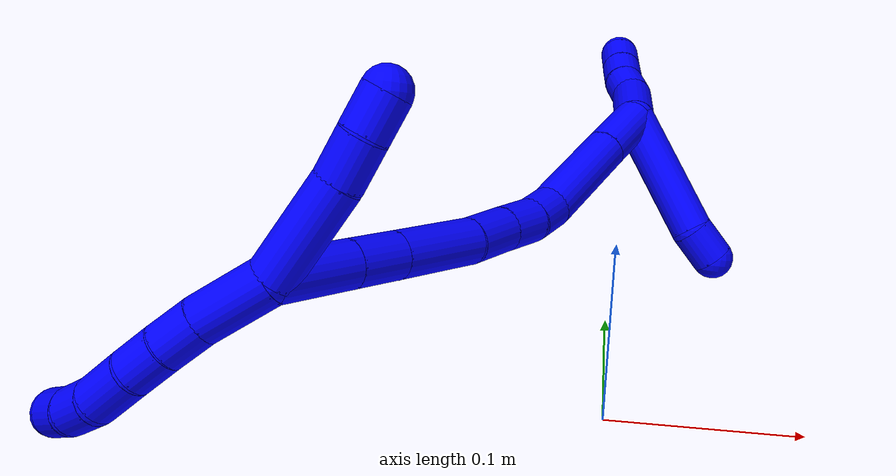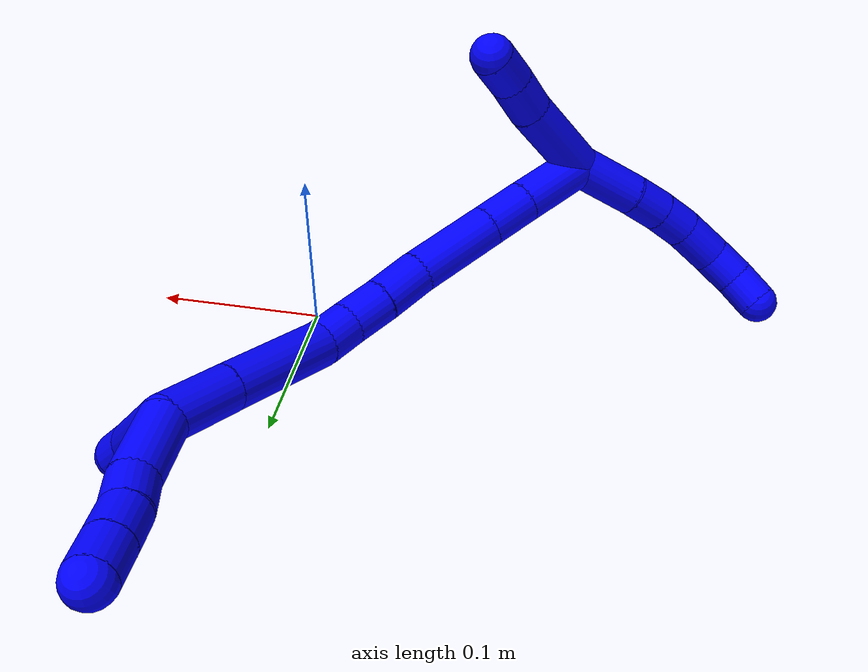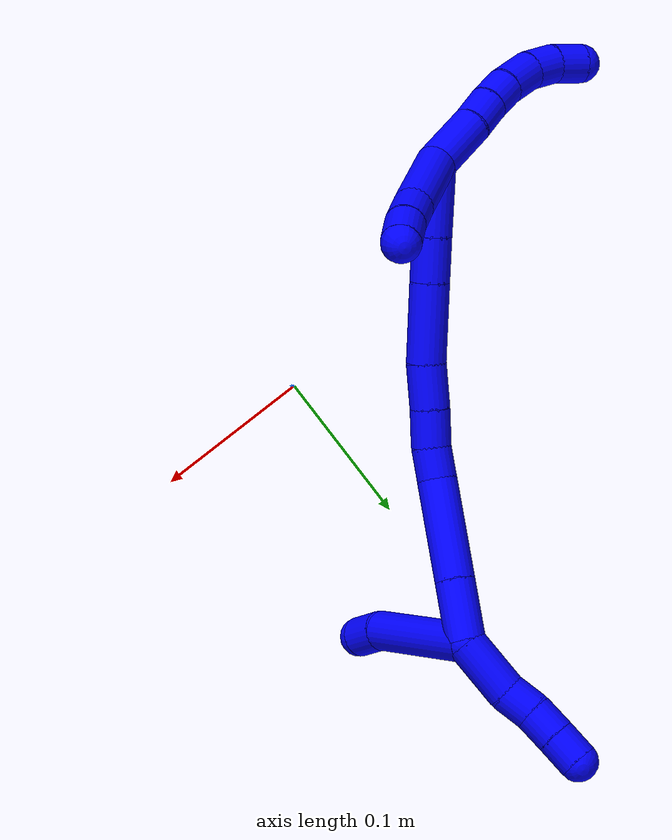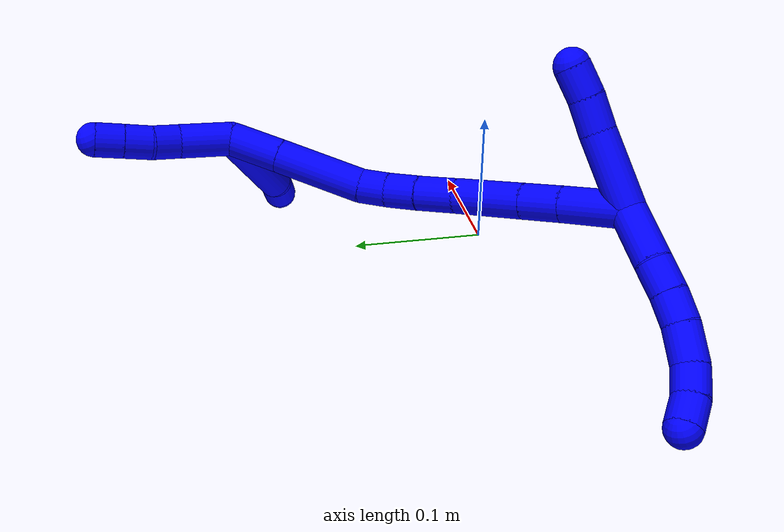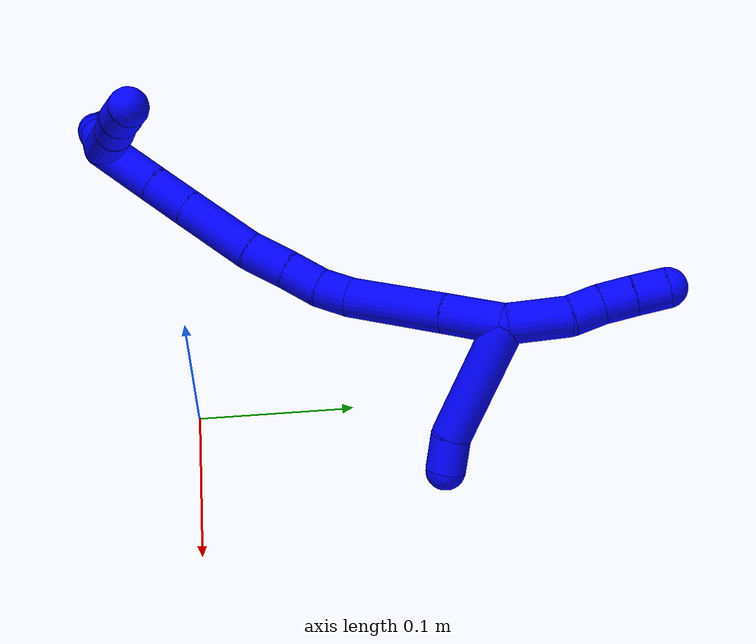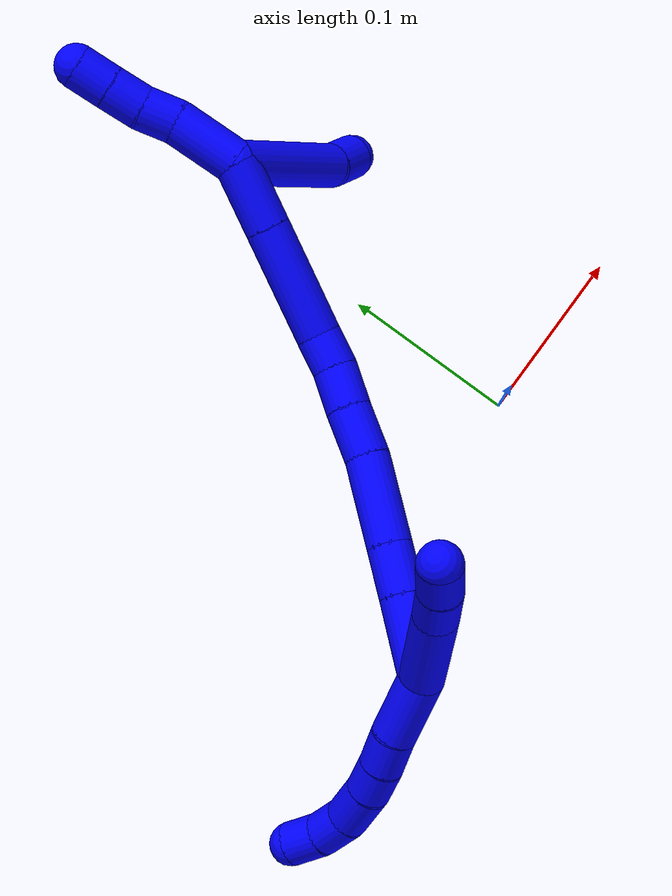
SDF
<sdf version="1.7">
 <world name="default">
  <plugin name="TubeGeneratorPlugin" filename="libtube_generator_plugin.so"/>
  <model name="photoneo_s_sensor">
   <static>1</static>
   <pose>0 0 2 1.57079 1.57079 3.14159</pose>
   <link name="link">
    <inertial><mass>0.1</mass></inertial>
    <sensor name="sensor" type="depth">
     <update_rate>30</update_rate>
     <camera>
      <horizontal_fov>1.22</horizontal_fov>
      <image><width>1920</width><height>1200</height><format>B8G8R8</format></image>
      <clip><near>0.1</near><far>4</far></clip>
      <depth_camera><output>points</output></depth_camera>
     </camera>
     <plugin name="camera_plugin" filename="libgazebo_ros_depth_camera.so">
      <baseline>0.2</baseline>
      <alwaysOn>1</alwaysOn>
      <updateRate>0.0</updateRate>
      <cameraName>camera_ir</cameraName>
      <imageTopicName>/camera/color/image_raw</imageTopicName>
      <cameraInfoTopicName>/camera/color/camera_info</cameraInfoTopicName>
      <depthImageTopicName>/camera/depth/image_raw</depthImageTopicName>
      <depthImageCameraInfoTopicName>/camera/depth/camera_info</depthImageCameraInfoTopicName>
      <pointCloudTopicName>/camera/depth/points</pointCloudTopicName>
      <frameName>fr_optical</frameName>
      <pointCloudCutoff>0.1</pointCloudCutoff>
      <pointCloudCutoffMax>2.0</pointCloudCutoffMax>
      <distortionK1>0</distortionK1>
      <distortionK2>0</distortionK2>
      <distortionK3>0</distortionK3>
      <distortionT1>0</distortionT1>
      <distortionT2>0</distortionT2>
      <CxPrime>0</CxPrime>
      <Cx>0</Cx>
      <Cy>0</Cy>
      <focalLength>0</focalLength>
      <hackBaseline>0</hackBaseline>
     </plugin>
    </sensor>
   </link>
  </model>
  <gravity>0 0 -9.8</gravity>
  <magnetic_field>6e-06 2.3e-05 -4.2e-05</magnetic_field>
  <atmosphere type="adiabatic"/>
  <physics name="default_physics" default="0" type="ode">
   <max_step_size>0.003</max_step_size>
   <real_time_factor>1</real_time_factor>
   <real_time_update_rate>1000</real_time_update_rate>
   <max_contacts>10000</max_contacts>
   <ode>
    <solver>
     <type>quick</type>
     <iters>100</iters>
     <sor>1.3</sor>
     <use_dynamic_moi_rescaling>0</use_dynamic_moi_rescaling>
    </solver>
    <constraints>
     <contact_max_correcting_vel>0</contact_max_correcting_vel>
     <contact_surface_layer>0.001</contact_surface_layer>
     <cfm>0</cfm>
     <erp>0.2</erp>
    </constraints>
   </ode>
  </physics>
  <scene><ambient>0.4 0.4 0.4 1</ambient><background>0.7 0.7 0.7 1</background><shadows>0</shadows></scene>
  <audio><device>default</device></audio>
  <spherical_coordinates>
   <surface_model>EARTH_WGS84</surface_model>
   <latitude_deg>0</latitude_deg>
   <longitude_deg>0</longitude_deg>
   <elevation>0</elevation>
   <heading_deg>0</heading_deg>
  </spherical_coordinates>
  <model name="bin">
   <static>1</static>
   <link name="bottom">
    <collision name="collision-bottom">
     <pose>0 0 -0.01 0 -0 0</pose>
     <geometry><box><size>0.8 0.6 0.02</size></box></geometry>
     <surface>
      <friction><ode><mu>100</mu><mu2>100</mu2></ode></friction>
      <contact><collide_bitmask>65535</collide_bitmask></contact>
     </surface>
    </collision>
   </link>
   <link name="west_wall">
    <collision name="collision-west_wall">
     <pose>-0.41 0 0.1 0 -0 0</pose>
     <geometry><box><size>0.02 0.6 0.2</size></box></geometry>
     <surface>
      <friction><ode><mu>100</mu><mu2>100</mu2></ode></friction>
      <contact><collide_bitmask>65535</collide_bitmask></contact>
     </surface>
    </collision>
   </link>
   <link name="east_wall">
    <collision name="collision-east_wall">
     <pose>0.41 0 0.1 0 -0 0</pose>
     <geometry><box><size>0.02 0.6 0.2</size></box></geometry>
     <surface>
      <friction><ode><mu>100</mu><mu2>100</mu2></ode></friction>
      <contact><collide_bitmask>65535</collide_bitmask></contact>
     </surface>
    </collision>
   </link>
   <link name="south_wall">
    <collision name="collision-south_wall">
     <pose>0 -0.31 0.1 0 -0 0</pose>
     <geometry><box><size>0.8 0.02 0.2</size></box></geometry>
     <surface>
      <friction><ode><mu>100</mu><mu2>100</mu2></ode></friction>
      <contact><collide_bitmask>65535</collide_bitmask></contact>
     </surface>
    </collision>
   </link>
   <link name="north_wall">
    <collision name="collision-north_wall">
     <pose>0 0.31 0.1 0 -0 0</pose>
     <geometry><box><size>0.8 0.02 0.2</size></box></geometry>
     <surface>
      <friction><ode><mu>100</mu><mu2>100</mu2></ode></friction>
      <contact><collide_bitmask>65535</collide_bitmask></contact>
     </surface>
    </collision>
   </link>
  </model>
  <model name="1">
   <static>0</static>
   <link name="1">
    <collision name="collision-cylinder-e_1_2_8">
     <pose>0.00101 -0.015816 0.01168 0.93471 0.051301 0.025893</pose>
     <geometry><cylinder><radius>0.0125</radius><length>0.039375</length></cylinder></geometry>
     <surface>
      <friction><ode><mu>1.16</mu><mu2>1.16</mu2><slip1>0</slip1><slip2>0</slip2></ode></friction>
      <contact><ode><kp>1e+06</kp><kd>1</kd><max_vel>0</max_vel><min_depth>0.001</min_depth></ode></contact>
     </surface>
    </collision>
    <visual name="visual-cylinder-e_1_2_8">
     <pose>0.00101 -0.015816 0.01168 0.93471 0.051301 0.025893</pose>
     <geometry><cylinder><radius>0.0125</radius><length>0.039375</length></cylinder></geometry>
     <material><ambient>0 0 1 1</ambient></material>
    </visual>
    <collision name="collision-cylinder-e_2_8_9">
     <pose>0.002284 -0.0398 0.030774 0.833747 0.024022 0.010638</pose>
     <geometry><cylinder><radius>0.0125</radius><length>0.022068</length></cylinder></geometry>
     <surface>
      <friction><ode><mu>1.16</mu><mu2>1.16</mu2><slip1>0</slip1><slip2>0</slip2></ode></friction>
      <contact><ode><kp>1e+06</kp><kd>1</kd><max_vel>0</max_vel><min_depth>0.001</min_depth></ode></contact>
     </surface>
    </collision>
    <visual name="visual-cylinder-e_2_8_9">
     <pose>0.002284 -0.0398 0.030774 0.833747 0.024022 0.010638</pose>
     <geometry><cylinder><radius>0.0125</radius><length>0.022068</length></cylinder></geometry>
     <material><ambient>0 0 1 1</ambient></material>
    </visual>
    <collision name="collision-cylinder-e_3_9_10">
     <pose>0.003682 -0.055535 0.04529 0.817042 0.108758 0.047116</pose>
     <geometry><cylinder><radius>0.0125</radius><length>0.020878</length></cylinder></geometry>
     <surface>
      <friction><ode><mu>1.16</mu><mu2>1.16</mu2><slip1>0</slip1><slip2>0</slip2></ode></friction>
      <contact><ode><kp>1e+06</kp><kd>1</kd><max_vel>0</max_vel><min_depth>0.001</min_depth></ode></contact>
     </surface>
    </collision>
    <visual name="visual-cylinder-e_3_9_10">
     <pose>0.003682 -0.055535 0.04529 0.817042 0.108758 0.047116</pose>
     <geometry><cylinder><radius>0.0125</radius><length>0.020878</length></cylinder></geometry>
     <material><ambient>0 0 1 1</ambient></material>
    </visual>
    <collision name="collision-cylinder-e_4_10_11">
     <pose>0.008171 -0.072468 0.061184 0.817028 0.255529 0.111101</pose>
     <geometry><cylinder><radius>0.0125</radius><length>0.026556</length></cylinder></geometry>
     <surface>
      <friction><ode><mu>1.16</mu><mu2>1.16</mu2><slip1>0</slip1><slip2>0</slip2></ode></friction>
      <contact><ode><kp>1e+06</kp><kd>1</kd><max_vel>0</max_vel><min_depth>0.001</min_depth></ode></contact>
     </surface>
    </collision>
    <visual name="visual-cylinder-e_4_10_11">
     <pose>0.008171 -0.072468 0.061184 0.817028 0.255529 0.111101</pose>
     <geometry><cylinder><radius>0.0125</radius><length>0.026556</length></cylinder></geometry>
     <material><ambient>0 0 1 1</ambient></material>
    </visual>
    <collision name="collision-cylinder-e_5_11_12">
     <pose>0.016261 -0.089675 0.0748 1.01927 0.474959 0.268918</pose>
     <geometry><cylinder><radius>0.0125</radius><length>0.020701</length></cylinder></geometry>
     <surface>
      <friction><ode><mu>1.16</mu><mu2>1.16</mu2><slip1>0</slip1><slip2>0</slip2></ode></friction>
      <contact><ode><kp>1e+06</kp><kd>1</kd><max_vel>0</max_vel><min_depth>0.001</min_depth></ode></contact>
     </surface>
    </collision>
    <visual name="visual-cylinder-e_5_11_12">
     <pose>0.016261 -0.089675 0.0748 1.01927 0.474959 0.268918</pose>
     <geometry><cylinder><radius>0.0125</radius><length>0.020701</length></cylinder></geometry>
     <material><ambient>0 0 1 1</ambient></material>
    </visual>
    <collision name="collision-cylinder-e_6_12_6">
     <pose>0.027478 -0.104841 0.082548 1.19095 0.687961 0.476194</pose>
     <geometry><cylinder><radius>0.0125</radius><length>0.020422</length></cylinder></geometry>
     <surface>
      <friction><ode><mu>1.16</mu><mu2>1.16</mu2><slip1>0</slip1><slip2>0</slip2></ode></friction>
      <contact><ode><kp>1e+06</kp><kd>1</kd><max_vel>0</max_vel><min_depth>0.001</min_depth></ode></contact>
     </surface>
    </collision>
    <visual name="visual-cylinder-e_6_12_6">
     <pose>0.027478 -0.104841 0.082548 1.19095 0.687961 0.476194</pose>
     <geometry><cylinder><radius>0.0125</radius><length>0.020422</length></cylinder></geometry>
     <material><ambient>0 0 1 1</ambient></material>
    </visual>
    <collision name="collision-cylinder-e_1_2_13">
     <pose>-0.001525 0.013304 -0.023401 -2.62464 -0.056589 0.213282</pose>
     <geometry><cylinder><radius>0.0125</radius><length>0.053922</length></cylinder></geometry>
     <surface>
      <friction><ode><mu>1.16</mu><mu2>1.16</mu2><slip1>0</slip1><slip2>0</slip2></ode></friction>
      <contact><ode><kp>1e+06</kp><kd>1</kd><max_vel>0</max_vel><min_depth>0.001</min_depth></ode></contact>
     </surface>
    </collision>
    <visual name="visual-cylinder-e_1_2_13">
     <pose>-0.001525 0.013304 -0.023401 -2.62464 -0.056589 0.213282</pose>
     <geometry><cylinder><radius>0.0125</radius><length>0.053922</length></cylinder></geometry>
     <material><ambient>0 0 1 1</ambient></material>
    </visual>
    <collision name="collision-cylinder-e_2_13_14">
     <pose>-0.004092 0.03137 -0.057802 -2.73299 -0.086723 0.412858</pose>
     <geometry><cylinder><radius>0.0125</radius><length>0.024066</length></cylinder></geometry>
     <surface>
      <friction><ode><mu>1.16</mu><mu2>1.16</mu2><slip1>0</slip1><slip2>0</slip2></ode></friction>
      <contact><ode><kp>1e+06</kp><kd>1</kd><max_vel>0</max_vel><min_depth>0.001</min_depth></ode></contact>
     </surface>
    </collision>
    <visual name="visual-cylinder-e_2_13_14">
     <pose>-0.004092 0.03137 -0.057802 -2.73299 -0.086723 0.412858</pose>
     <geometry><cylinder><radius>0.0125</radius><length>0.024066</length></cylinder></geometry>
     <material><ambient>0 0 1 1</ambient></material>
    </visual>
    <collision name="collision-cylinder-e_3_14_5">
     <pose>-0.004791 0.040315 -0.078978 -2.75168 0.031203 -0.157701</pose>
     <geometry><cylinder><radius>0.0125</radius><length>0.022012</length></cylinder></geometry>
     <surface>
      <friction><ode><mu>1.16</mu><mu2>1.16</mu2><slip1>0</slip1><slip2>0</slip2></ode></friction>
      <contact><ode><kp>1e+06</kp><kd>1</kd><max_vel>0</max_vel><min_depth>0.001</min_depth></ode></contact>
     </surface>
    </collision>
    <visual name="visual-cylinder-e_3_14_5">
     <pose>-0.004791 0.040315 -0.078978 -2.75168 0.031203 -0.157701</pose>
     <geometry><cylinder><radius>0.0125</radius><length>0.022012</length></cylinder></geometry>
     <material><ambient>0 0 1 1</ambient></material>
    </visual>
    <collision name="collision-cylinder-e_1_2_15">
     <pose>0.016739 0.014256 -0.003572 -1.81632 0.85027 -1.05146</pose>
     <geometry><cylinder><radius>0.0125</radius><length>0.04455</length></cylinder></geometry>
     <surface>
      <friction><ode><mu>1.16</mu><mu2>1.16</mu2><slip1>0</slip1><slip2>0</slip2></ode></friction>
      <contact><ode><kp>1e+06</kp><kd>1</kd><max_vel>0</max_vel><min_depth>0.001</min_depth></ode></contact>
     </surface>
    </collision>
    <visual name="visual-cylinder-e_1_2_15">
     <pose>0.016739 0.014256 -0.003572 -1.81632 0.85027 -1.05146</pose>
     <geometry><cylinder><radius>0.0125</radius><length>0.04455</length></cylinder></geometry>
     <material><ambient>0 0 1 1</ambient></material>
    </visual>
    <collision name="collision-cylinder-e_2_15_16">
     <pose>0.044235 0.037481 -0.00934 -1.81084 0.861459 -1.05944</pose>
     <geometry><cylinder><radius>0.0125</radius><length>0.028354</length></cylinder></geometry>
     <surface>
      <friction><ode><mu>1.16</mu><mu2>1.16</mu2><slip1>0</slip1><slip2>0</slip2></ode></friction>
      <contact><ode><kp>1e+06</kp><kd>1</kd><max_vel>0</max_vel><min_depth>0.001</min_depth></ode></contact>
     </surface>
    </collision>
    <visual name="visual-cylinder-e_2_15_16">
     <pose>0.044235 0.037481 -0.00934 -1.81084 0.861459 -1.05944</pose>
     <geometry><cylinder><radius>0.0125</radius><length>0.028354</length></cylinder></geometry>
     <material><ambient>0 0 1 1</ambient></material>
    </visual>
    <collision name="collision-cylinder-e_3_16_17">
     <pose>0.074243 0.062401 -0.015515 -1.81534 0.864002 -1.06641</pose>
     <geometry><cylinder><radius>0.0125</radius><length>0.050631</length></cylinder></geometry>
     <surface>
      <friction><ode><mu>1.16</mu><mu2>1.16</mu2><slip1>0</slip1><slip2>0</slip2></ode></friction>
      <contact><ode><kp>1e+06</kp><kd>1</kd><max_vel>0</max_vel><min_depth>0.001</min_depth></ode></contact>
     </surface>
    </collision>
    <visual name="visual-cylinder-e_3_16_17">
     <pose>0.074243 0.062401 -0.015515 -1.81534 0.864002 -1.06641</pose>
     <geometry><cylinder><radius>0.0125</radius><length>0.050631</length></cylinder></geometry>
     <material><ambient>0 0 1 1</ambient></material>
    </visual>
    <collision name="collision-cylinder-e_4_17_18">
     <pose>0.105104 0.085917 -0.022764 -1.97856 0.953481 -1.33193</pose>
     <geometry><cylinder><radius>0.0125</radius><length>0.028474</length></cylinder></geometry>
     <surface>
      <friction><ode><mu>1.16</mu><mu2>1.16</mu2><slip1>0</slip1><slip2>0</slip2></ode></friction>
      <contact><ode><kp>1e+06</kp><kd>1</kd><max_vel>0</max_vel><min_depth>0.001</min_depth></ode></contact>
     </surface>
    </collision>
    <visual name="visual-cylinder-e_4_17_18">
     <pose>0.105104 0.085917 -0.022764 -1.97856 0.953481 -1.33193</pose>
     <geometry><cylinder><radius>0.0125</radius><length>0.028474</length></cylinder></geometry>
     <material><ambient>0 0 1 1</ambient></material>
    </visual>
    <collision name="collision-cylinder-e_5_18_19">
     <pose>0.1262 0.10034 -0.028763 -1.94974 0.909561 -1.24937</pose>
     <geometry><cylinder><radius>0.0125</radius><length>0.024039</length></cylinder></geometry>
     <surface>
      <friction><ode><mu>1.16</mu><mu2>1.16</mu2><slip1>0</slip1><slip2>0</slip2></ode></friction>
      <contact><ode><kp>1e+06</kp><kd>1</kd><max_vel>0</max_vel><min_depth>0.001</min_depth></ode></contact>
     </surface>
    </collision>
    <visual name="visual-cylinder-e_5_18_19">
     <pose>0.1262 0.10034 -0.028763 -1.94974 0.909561 -1.24937</pose>
     <geometry><cylinder><radius>0.0125</radius><length>0.024039</length></cylinder></geometry>
     <material><ambient>0 0 1 1</ambient></material>
    </visual>
    <collision name="collision-cylinder-e_6_19_20">
     <pose>0.14413 0.111833 -0.035318 -2.26057 0.952228 -1.66045</pose>
     <geometry><cylinder><radius>0.0125</radius><length>0.02073</length></cylinder></geometry>
     <surface>
      <friction><ode><mu>1.16</mu><mu2>1.16</mu2><slip1>0</slip1><slip2>0</slip2></ode></friction>
      <contact><ode><kp>1e+06</kp><kd>1</kd><max_vel>0</max_vel><min_depth>0.001</min_depth></ode></contact>
     </surface>
    </collision>
    <visual name="visual-cylinder-e_6_19_20">
     <pose>0.14413 0.111833 -0.035318 -2.26057 0.952228 -1.66045</pose>
     <geometry><cylinder><radius>0.0125</radius><length>0.02073</length></cylinder></geometry>
     <material><ambient>0 0 1 1</ambient></material>
    </visual>
    <collision name="collision-cylinder-e_7_20_21">
     <pose>0.175461 0.13026 -0.057251 -2.49076 0.788142 -1.77825</pose>
     <geometry><cylinder><radius>0.0125</radius><length>0.064556</length></cylinder></geometry>
     <surface>
      <friction><ode><mu>1.16</mu><mu2>1.16</mu2><slip1>0</slip1><slip2>0</slip2></ode></friction>
      <contact><ode><kp>1e+06</kp><kd>1</kd><max_vel>0</max_vel><min_depth>0.001</min_depth></ode></contact>
     </surface>
    </collision>
    <visual name="visual-cylinder-e_7_20_21">
     <pose>0.175461 0.13026 -0.057251 -2.49076 0.788142 -1.77825</pose>
     <geometry><cylinder><radius>0.0125</radius><length>0.064556</length></cylinder></geometry>
     <material><ambient>0 0 1 1</ambient></material>
    </visual>
    <collision name="collision-cylinder-e_8_21_1">
     <pose>0.212155 0.152329 -0.086064 -2.48327 0.795418 -1.77622</pose>
     <geometry><cylinder><radius>0.0125</radius><length>0.038666</length></cylinder></geometry>
     <surface>
      <friction><ode><mu>1.16</mu><mu2>1.16</mu2><slip1>0</slip1><slip2>0</slip2></ode></friction>
      <contact><ode><kp>1e+06</kp><kd>1</kd><max_vel>0</max_vel><min_depth>0.001</min_depth></ode></contact>
     </surface>
    </collision>
    <visual name="visual-cylinder-e_8_21_1">
     <pose>0.212155 0.152329 -0.086064 -2.48327 0.795418 -1.77622</pose>
     <geometry><cylinder><radius>0.0125</radius><length>0.038666</length></cylinder></geometry>
     <material><ambient>0 0 1 1</ambient></material>
    </visual>
    <collision name="collision-cylinder-e_1_1_22">
     <pose>0.220717 0.181852 -0.064517 -0.582465 -0.134977 0.040516</pose>
     <geometry><cylinder><radius>0.0125</radius><length>0.077949</length></cylinder></geometry>
     <surface>
      <friction><ode><mu>1.16</mu><mu2>1.16</mu2><slip1>0</slip1><slip2>0</slip2></ode></friction>
      <contact><ode><kp>1e+06</kp><kd>1</kd><max_vel>0</max_vel><min_depth>0.001</min_depth></ode></contact>
     </surface>
    </collision>
    <visual name="visual-cylinder-e_1_1_22">
     <pose>0.220717 0.181852 -0.064517 -0.582465 -0.134977 0.040516</pose>
     <geometry><cylinder><radius>0.0125</radius><length>0.077949</length></cylinder></geometry>
     <material><ambient>0 0 1 1</ambient></material>
    </visual>
    <collision name="collision-cylinder-e_2_22_4">
     <pose>0.216537 0.210533 -0.024195 -0.744541 0.096751 -0.037804</pose>
     <geometry><cylinder><radius>0.0125</radius><length>0.022051</length></cylinder></geometry>
     <surface>
      <friction><ode><mu>1.16</mu><mu2>1.16</mu2><slip1>0</slip1><slip2>0</slip2></ode></friction>
      <contact><ode><kp>1e+06</kp><kd>1</kd><max_vel>0</max_vel><min_depth>0.001</min_depth></ode></contact>
     </surface>
    </collision>
    <visual name="visual-cylinder-e_2_22_4">
     <pose>0.216537 0.210533 -0.024195 -0.744541 0.096751 -0.037804</pose>
     <geometry><cylinder><radius>0.0125</radius><length>0.022051</length></cylinder></geometry>
     <material><ambient>0 0 1 1</ambient></material>
    </visual>
    <collision name="collision-cylinder-e_1_1_23">
     <pose>0.243678 0.159578 -0.104665 3.01186 1.14839 2.94143</pose>
     <geometry><cylinder><radius>0.0125</radius><length>0.038848</length></cylinder></geometry>
     <surface>
      <friction><ode><mu>1.16</mu><mu2>1.16</mu2><slip1>0</slip1><slip2>0</slip2></ode></friction>
      <contact><ode><kp>1e+06</kp><kd>1</kd><max_vel>0</max_vel><min_depth>0.001</min_depth></ode></contact>
     </surface>
    </collision>
    <visual name="visual-cylinder-e_1_1_23">
     <pose>0.243678 0.159578 -0.104665 3.01186 1.14839 2.94143</pose>
     <geometry><cylinder><radius>0.0125</radius><length>0.038848</length></cylinder></geometry>
     <material><ambient>0 0 1 1</ambient></material>
    </visual>
    <collision name="collision-cylinder-e_2_23_24">
     <pose>0.269856 0.155686 -0.117301 2.59841 0.991362 2.19042</pose>
     <geometry><cylinder><radius>0.0125</radius><length>0.020224</length></cylinder></geometry>
     <surface>
      <friction><ode><mu>1.16</mu><mu2>1.16</mu2><slip1>0</slip1><slip2>0</slip2></ode></friction>
      <contact><ode><kp>1e+06</kp><kd>1</kd><max_vel>0</max_vel><min_depth>0.001</min_depth></ode></contact>
     </surface>
    </collision>
    <visual name="visual-cylinder-e_2_23_24">
     <pose>0.269856 0.155686 -0.117301 2.59841 0.991362 2.19042</pose>
     <geometry><cylinder><radius>0.0125</radius><length>0.020224</length></cylinder></geometry>
     <material><ambient>0 0 1 1</ambient></material>
    </visual>
    <collision name="collision-cylinder-e_3_24_25">
     <pose>0.286855 0.151598 -0.127397 2.91657 0.998961 2.7332</pose>
     <geometry><cylinder><radius>0.0125</radius><length>0.020307</length></cylinder></geometry>
     <surface>
      <friction><ode><mu>1.16</mu><mu2>1.16</mu2><slip1>0</slip1><slip2>0</slip2></ode></friction>
      <contact><ode><kp>1e+06</kp><kd>1</kd><max_vel>0</max_vel><min_depth>0.001</min_depth></ode></contact>
     </surface>
    </collision>
    <visual name="visual-cylinder-e_3_24_25">
     <pose>0.286855 0.151598 -0.127397 2.91657 0.998961 2.7332</pose>
     <geometry><cylinder><radius>0.0125</radius><length>0.020307</length></cylinder></geometry>
     <material><ambient>0 0 1 1</ambient></material>
    </visual>
    <collision name="collision-cylinder-e_4_25_3">
     <pose>0.304142 0.149296 -0.138102 2.9431 1.01318 2.78648</pose>
     <geometry><cylinder><radius>0.0125</radius><length>0.020622</length></cylinder></geometry>
     <surface>
      <friction><ode><mu>1.16</mu><mu2>1.16</mu2><slip1>0</slip1><slip2>0</slip2></ode></friction>
      <contact><ode><kp>1e+06</kp><kd>1</kd><max_vel>0</max_vel><min_depth>0.001</min_depth></ode></contact>
     </surface>
    </collision>
    <visual name="visual-cylinder-e_4_25_3">
     <pose>0.304142 0.149296 -0.138102 2.9431 1.01318 2.78648</pose>
     <geometry><cylinder><radius>0.0125</radius><length>0.020622</length></cylinder></geometry>
     <material><ambient>0 0 1 1</ambient></material>
    </visual>
    <collision name="collision-sphere-3">
     <pose>0.312891 0.14822 -0.143451 0 -0 0</pose>
     <geometry><sphere><radius>0.0125</radius></sphere></geometry>
     <surface>
      <friction><ode><mu>1.16</mu><mu2>1.16</mu2><slip1>0</slip1><slip2>0</slip2></ode></friction>
      <contact><ode><kp>1e+06</kp><kd>1</kd><max_vel>0</max_vel><min_depth>0.001</min_depth></ode></contact>
     </surface>
    </collision>
    <visual name="visual-sphere-3">
     <pose>0.312891 0.14822 -0.143451 0 -0 0</pose>
     <geometry><sphere><radius>0.0125</radius></sphere></geometry>
     <material><ambient>0 0 1 1</ambient></material>
    </visual>
    <collision name="collision-sphere-25">
     <pose>0.295394 0.150372 -0.132753 0 -0 0</pose>
     <geometry><sphere><radius>0.0125</radius></sphere></geometry>
     <surface>
      <friction><ode><mu>1.16</mu><mu2>1.16</mu2><slip1>0</slip1><slip2>0</slip2></ode></friction>
      <contact><ode><kp>1e+06</kp><kd>1</kd><max_vel>0</max_vel><min_depth>0.001</min_depth></ode></contact>
     </surface>
    </collision>
    <visual name="visual-sphere-25">
     <pose>0.295394 0.150372 -0.132753 0 -0 0</pose>
     <geometry><sphere><radius>0.0125</radius></sphere></geometry>
     <material><ambient>0 0 1 1</ambient></material>
    </visual>
    <collision name="collision-sphere-24">
     <pose>0.278317 0.152824 -0.122041 0 -0 0</pose>
     <geometry><sphere><radius>0.0125</radius></sphere></geometry>
     <surface>
      <friction><ode><mu>1.16</mu><mu2>1.16</mu2><slip1>0</slip1><slip2>0</slip2></ode></friction>
      <contact><ode><kp>1e+06</kp><kd>1</kd><max_vel>0</max_vel><min_depth>0.001</min_depth></ode></contact>
     </surface>
    </collision>
    <visual name="visual-sphere-24">
     <pose>0.278317 0.152824 -0.122041 0 -0 0</pose>
     <geometry><sphere><radius>0.0125</radius></sphere></geometry>
     <material><ambient>0 0 1 1</ambient></material>
    </visual>
    <collision name="collision-sphere-23">
     <pose>0.261395 0.158548 -0.112561 0 -0 0</pose>
     <geometry><sphere><radius>0.0125</radius></sphere></geometry>
     <surface>
      <friction><ode><mu>1.16</mu><mu2>1.16</mu2><slip1>0</slip1><slip2>0</slip2></ode></friction>
      <contact><ode><kp>1e+06</kp><kd>1</kd><max_vel>0</max_vel><min_depth>0.001</min_depth></ode></contact>
     </surface>
    </collision>
    <visual name="visual-sphere-23">
     <pose>0.261395 0.158548 -0.112561 0 -0 0</pose>
     <geometry><sphere><radius>0.0125</radius></sphere></geometry>
     <material><ambient>0 0 1 1</ambient></material>
    </visual>
    <collision name="collision-sphere-4">
     <pose>0.217602 0.217969 -0.016125 0 -0 0</pose>
     <geometry><sphere><radius>0.0125</radius></sphere></geometry>
     <surface>
      <friction><ode><mu>1.16</mu><mu2>1.16</mu2><slip1>0</slip1><slip2>0</slip2></ode></friction>
      <contact><ode><kp>1e+06</kp><kd>1</kd><max_vel>0</max_vel><min_depth>0.001</min_depth></ode></contact>
     </surface>
    </collision>
    <visual name="visual-sphere-4">
     <pose>0.217602 0.217969 -0.016125 0 -0 0</pose>
     <geometry><sphere><radius>0.0125</radius></sphere></geometry>
     <material><ambient>0 0 1 1</ambient></material>
    </visual>
    <collision name="collision-sphere-22">
     <pose>0.215472 0.203097 -0.032265 0 -0 0</pose>
     <geometry><sphere><radius>0.0125</radius></sphere></geometry>
     <surface>
      <friction><ode><mu>1.16</mu><mu2>1.16</mu2><slip1>0</slip1><slip2>0</slip2></ode></friction>
      <contact><ode><kp>1e+06</kp><kd>1</kd><max_vel>0</max_vel><min_depth>0.001</min_depth></ode></contact>
     </surface>
    </collision>
    <visual name="visual-sphere-22">
     <pose>0.215472 0.203097 -0.032265 0 -0 0</pose>
     <geometry><sphere><radius>0.0125</radius></sphere></geometry>
     <material><ambient>0 0 1 1</ambient></material>
    </visual>
    <collision name="collision-sphere-1">
     <pose>0.225961 0.160608 -0.096769 0 -0 0</pose>
     <geometry><sphere><radius>0.0125</radius></sphere></geometry>
     <surface>
      <friction><ode><mu>1.16</mu><mu2>1.16</mu2><slip1>0</slip1><slip2>0</slip2></ode></friction>
      <contact><ode><kp>1e+06</kp><kd>1</kd><max_vel>0</max_vel><min_depth>0.001</min_depth></ode></contact>
     </surface>
    </collision>
    <visual name="visual-sphere-1">
     <pose>0.225961 0.160608 -0.096769 0 -0 0</pose>
     <geometry><sphere><radius>0.0125</radius></sphere></geometry>
     <material><ambient>0 0 1 1</ambient></material>
    </visual>
    <collision name="collision-sphere-21">
     <pose>0.198348 0.14405 -0.075359 0 -0 0</pose>
     <geometry><sphere><radius>0.0125</radius></sphere></geometry>
     <surface>
      <friction><ode><mu>1.16</mu><mu2>1.16</mu2><slip1>0</slip1><slip2>0</slip2></ode></friction>
      <contact><ode><kp>1e+06</kp><kd>1</kd><max_vel>0</max_vel><min_depth>0.001</min_depth></ode></contact>
     </surface>
    </collision>
    <visual name="visual-sphere-21">
     <pose>0.198348 0.14405 -0.075359 0 -0 0</pose>
     <geometry><sphere><radius>0.0125</radius></sphere></geometry>
     <material><ambient>0 0 1 1</ambient></material>
    </visual>
    <collision name="collision-sphere-12">
     <pose>0.020994 -0.097514 0.079623 0 -0 0</pose>
     <geometry><sphere><radius>0.0125</radius></sphere></geometry>
     <surface>
      <friction><ode><mu>1.16</mu><mu2>1.16</mu2><slip1>0</slip1><slip2>0</slip2></ode></friction>
      <contact><ode><kp>1e+06</kp><kd>1</kd><max_vel>0</max_vel><min_depth>0.001</min_depth></ode></contact>
     </surface>
    </collision>
    <visual name="visual-sphere-12">
     <pose>0.020994 -0.097514 0.079623 0 -0 0</pose>
     <geometry><sphere><radius>0.0125</radius></sphere></geometry>
     <material><ambient>0 0 1 1</ambient></material>
    </visual>
    <collision name="collision-sphere-11">
     <pose>0.011528 -0.081835 0.069977 0 -0 0</pose>
     <geometry><sphere><radius>0.0125</radius></sphere></geometry>
     <surface>
      <friction><ode><mu>1.16</mu><mu2>1.16</mu2><slip1>0</slip1><slip2>0</slip2></ode></friction>
      <contact><ode><kp>1e+06</kp><kd>1</kd><max_vel>0</max_vel><min_depth>0.001</min_depth></ode></contact>
     </surface>
    </collision>
    <visual name="visual-sphere-11">
     <pose>0.011528 -0.081835 0.069977 0 -0 0</pose>
     <geometry><sphere><radius>0.0125</radius></sphere></geometry>
     <material><ambient>0 0 1 1</ambient></material>
    </visual>
    <collision name="collision-sphere-10">
     <pose>0.004815 -0.063101 0.052392 0 -0 0</pose>
     <geometry><sphere><radius>0.0125</radius></sphere></geometry>
     <surface>
      <friction><ode><mu>1.16</mu><mu2>1.16</mu2><slip1>0</slip1><slip2>0</slip2></ode></friction>
      <contact><ode><kp>1e+06</kp><kd>1</kd><max_vel>0</max_vel><min_depth>0.001</min_depth></ode></contact>
     </surface>
    </collision>
    <visual name="visual-sphere-10">
     <pose>0.004815 -0.063101 0.052392 0 -0 0</pose>
     <geometry><sphere><radius>0.0125</radius></sphere></geometry>
     <material><ambient>0 0 1 1</ambient></material>
    </visual>
    <collision name="collision-sphere-9">
     <pose>0.002549 -0.047968 0.038188 0 -0 0</pose>
     <geometry><sphere><radius>0.0125</radius></sphere></geometry>
     <surface>
      <friction><ode><mu>1.16</mu><mu2>1.16</mu2><slip1>0</slip1><slip2>0</slip2></ode></friction>
      <contact><ode><kp>1e+06</kp><kd>1</kd><max_vel>0</max_vel><min_depth>0.001</min_depth></ode></contact>
     </surface>
    </collision>
    <visual name="visual-sphere-9">
     <pose>0.002549 -0.047968 0.038188 0 -0 0</pose>
     <geometry><sphere><radius>0.0125</radius></sphere></geometry>
     <material><ambient>0 0 1 1</ambient></material>
    </visual>
    <collision name="collision-sphere-2">
     <geometry><sphere><radius>0.0125</radius></sphere></geometry>
     <surface>
      <friction><ode><mu>1.16</mu><mu2>1.16</mu2><slip1>0</slip1><slip2>0</slip2></ode></friction>
      <contact><ode><kp>1e+06</kp><kd>1</kd><max_vel>0</max_vel><min_depth>0.001</min_depth></ode></contact>
     </surface>
    </collision>
    <visual name="visual-sphere-2">
     <geometry><sphere><radius>0.0125</radius></sphere></geometry>
     <material><ambient>0 0 1 1</ambient></material>
    </visual>
    <collision name="collision-sphere-19">
     <pose>0.135686 0.107197 -0.031493 0 -0 0</pose>
     <geometry><sphere><radius>0.0125</radius></sphere></geometry>
     <surface>
      <friction><ode><mu>1.16</mu><mu2>1.16</mu2><slip1>0</slip1><slip2>0</slip2></ode></friction>
      <contact><ode><kp>1e+06</kp><kd>1</kd><max_vel>0</max_vel><min_depth>0.001</min_depth></ode></contact>
     </surface>
    </collision>
    <visual name="visual-sphere-19">
     <pose>0.135686 0.107197 -0.031493 0 -0 0</pose>
     <geometry><sphere><radius>0.0125</radius></sphere></geometry>
     <material><ambient>0 0 1 1</ambient></material>
    </visual>
    <collision name="collision-sphere-8">
     <pose>0.002019 -0.031632 0.02336 0 -0 0</pose>
     <geometry><sphere><radius>0.0125</radius></sphere></geometry>
     <surface>
      <friction><ode><mu>1.16</mu><mu2>1.16</mu2><slip1>0</slip1><slip2>0</slip2></ode></friction>
      <contact><ode><kp>1e+06</kp><kd>1</kd><max_vel>0</max_vel><min_depth>0.001</min_depth></ode></contact>
     </surface>
    </collision>
    <visual name="visual-sphere-8">
     <pose>0.002019 -0.031632 0.02336 0 -0 0</pose>
     <geometry><sphere><radius>0.0125</radius></sphere></geometry>
     <material><ambient>0 0 1 1</ambient></material>
    </visual>
    <collision name="collision-sphere-6">
     <pose>0.033961 -0.112167 0.085473 0 -0 0</pose>
     <geometry><sphere><radius>0.0125</radius></sphere></geometry>
     <surface>
      <friction><ode><mu>1.16</mu><mu2>1.16</mu2><slip1>0</slip1><slip2>0</slip2></ode></friction>
      <contact><ode><kp>1e+06</kp><kd>1</kd><max_vel>0</max_vel><min_depth>0.001</min_depth></ode></contact>
     </surface>
    </collision>
    <visual name="visual-sphere-6">
     <pose>0.033961 -0.112167 0.085473 0 -0 0</pose>
     <geometry><sphere><radius>0.0125</radius></sphere></geometry>
     <material><ambient>0 0 1 1</ambient></material>
    </visual>
    <collision name="collision-sphere-13">
     <pose>-0.00305 0.026607 -0.046801 0 -0 0</pose>
     <geometry><sphere><radius>0.0125</radius></sphere></geometry>
     <surface>
      <friction><ode><mu>1.16</mu><mu2>1.16</mu2><slip1>0</slip1><slip2>0</slip2></ode></friction>
      <contact><ode><kp>1e+06</kp><kd>1</kd><max_vel>0</max_vel><min_depth>0.001</min_depth></ode></contact>
     </surface>
    </collision>
    <visual name="visual-sphere-13">
     <pose>-0.00305 0.026607 -0.046801 0 -0 0</pose>
     <geometry><sphere><radius>0.0125</radius></sphere></geometry>
     <material><ambient>0 0 1 1</ambient></material>
    </visual>
    <collision name="collision-sphere-14">
     <pose>-0.005134 0.036134 -0.068803 0 -0 0</pose>
     <geometry><sphere><radius>0.0125</radius></sphere></geometry>
     <surface>
      <friction><ode><mu>1.16</mu><mu2>1.16</mu2><slip1>0</slip1><slip2>0</slip2></ode></friction>
      <contact><ode><kp>1e+06</kp><kd>1</kd><max_vel>0</max_vel><min_depth>0.001</min_depth></ode></contact>
     </surface>
    </collision>
    <visual name="visual-sphere-14">
     <pose>-0.005134 0.036134 -0.068803 0 -0 0</pose>
     <geometry><sphere><radius>0.0125</radius></sphere></geometry>
     <material><ambient>0 0 1 1</ambient></material>
    </visual>
    <collision name="collision-sphere-5">
     <pose>-0.004448 0.044496 -0.089153 0 -0 0</pose>
     <geometry><sphere><radius>0.0125</radius></sphere></geometry>
     <surface>
      <friction><ode><mu>1.16</mu><mu2>1.16</mu2><slip1>0</slip1><slip2>0</slip2></ode></friction>
      <contact><ode><kp>1e+06</kp><kd>1</kd><max_vel>0</max_vel><min_depth>0.001</min_depth></ode></contact>
     </surface>
    </collision>
    <visual name="visual-sphere-5">
     <pose>-0.004448 0.044496 -0.089153 0 -0 0</pose>
     <geometry><sphere><radius>0.0125</radius></sphere></geometry>
     <material><ambient>0 0 1 1</ambient></material>
    </visual>
    <collision name="collision-sphere-15">
     <pose>0.033477 0.028512 -0.007144 0 -0 0</pose>
     <geometry><sphere><radius>0.0125</radius></sphere></geometry>
     <surface>
      <friction><ode><mu>1.16</mu><mu2>1.16</mu2><slip1>0</slip1><slip2>0</slip2></ode></friction>
      <contact><ode><kp>1e+06</kp><kd>1</kd><max_vel>0</max_vel><min_depth>0.001</min_depth></ode></contact>
     </surface>
    </collision>
    <visual name="visual-sphere-15">
     <pose>0.033477 0.028512 -0.007144 0 -0 0</pose>
     <geometry><sphere><radius>0.0125</radius></sphere></geometry>
     <material><ambient>0 0 1 1</ambient></material>
    </visual>
    <collision name="collision-sphere-16">
     <pose>0.054992 0.04645 -0.011535 0 -0 0</pose>
     <geometry><sphere><radius>0.0125</radius></sphere></geometry>
     <surface>
      <friction><ode><mu>1.16</mu><mu2>1.16</mu2><slip1>0</slip1><slip2>0</slip2></ode></friction>
      <contact><ode><kp>1e+06</kp><kd>1</kd><max_vel>0</max_vel><min_depth>0.001</min_depth></ode></contact>
     </surface>
    </collision>
    <visual name="visual-sphere-16">
     <pose>0.054992 0.04645 -0.011535 0 -0 0</pose>
     <geometry><sphere><radius>0.0125</radius></sphere></geometry>
     <material><ambient>0 0 1 1</ambient></material>
    </visual>
    <collision name="collision-sphere-17">
     <pose>0.093494 0.078351 -0.019496 0 -0 0</pose>
     <geometry><sphere><radius>0.0125</radius></sphere></geometry>
     <surface>
      <friction><ode><mu>1.16</mu><mu2>1.16</mu2><slip1>0</slip1><slip2>0</slip2></ode></friction>
      <contact><ode><kp>1e+06</kp><kd>1</kd><max_vel>0</max_vel><min_depth>0.001</min_depth></ode></contact>
     </surface>
    </collision>
    <visual name="visual-sphere-17">
     <pose>0.093494 0.078351 -0.019496 0 -0 0</pose>
     <geometry><sphere><radius>0.0125</radius></sphere></geometry>
     <material><ambient>0 0 1 1</ambient></material>
    </visual>
    <collision name="collision-sphere-18">
     <pose>0.116713 0.093482 -0.026032 0 -0 0</pose>
     <geometry><sphere><radius>0.0125</radius></sphere></geometry>
     <surface>
      <friction><ode><mu>1.16</mu><mu2>1.16</mu2><slip1>0</slip1><slip2>0</slip2></ode></friction>
      <contact><ode><kp>1e+06</kp><kd>1</kd><max_vel>0</max_vel><min_depth>0.001</min_depth></ode></contact>
     </surface>
    </collision>
    <visual name="visual-sphere-18">
     <pose>0.116713 0.093482 -0.026032 0 -0 0</pose>
     <geometry><sphere><radius>0.0125</radius></sphere></geometry>
     <material><ambient>0 0 1 1</ambient></material>
    </visual>
    <collision name="collision-sphere-20">
     <pose>0.152575 0.11647 -0.039143 0 -0 0</pose>
     <geometry><sphere><radius>0.0125</radius></sphere></geometry>
     <surface>
      <friction><ode><mu>1.16</mu><mu2>1.16</mu2><slip1>0</slip1><slip2>0</slip2></ode></friction>
      <contact><ode><kp>1e+06</kp><kd>1</kd><max_vel>0</max_vel><min_depth>0.001</min_depth></ode></contact>
     </surface>
    </collision>
    <visual name="visual-sphere-20">
     <pose>0.152575 0.11647 -0.039143 0 -0 0</pose>
     <geometry><sphere><radius>0.0125</radius></sphere></geometry>
     <material><ambient>0 0 1 1</ambient></material>
    </visual>
    <inertial>
     <pose>0.112399 0.072577 -0.033584 0 -0 0</pose>
     <mass>0.75</mass>
     <inertia>
      <ixx>7.2e-05</ixx>
      <ixy>0</ixy>
      <ixz>0</ixz>
      <iyy>5.7e-05</iyy>
      <iyz>0</iyz>
      <izz>-0.000111</izz>
     </inertia>
    </inertial>
   </link>
   <pose>-0.153758 -0.052626 0.097374 -3.08433 0.379138 1.57428</pose>
  </model>
 </world>
</sdf>
